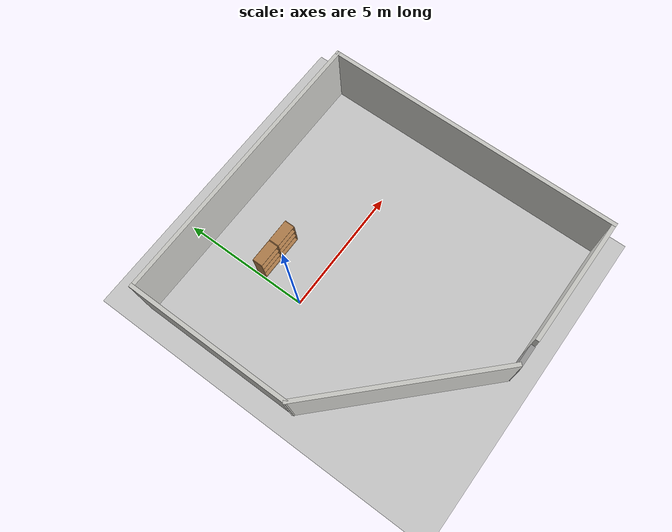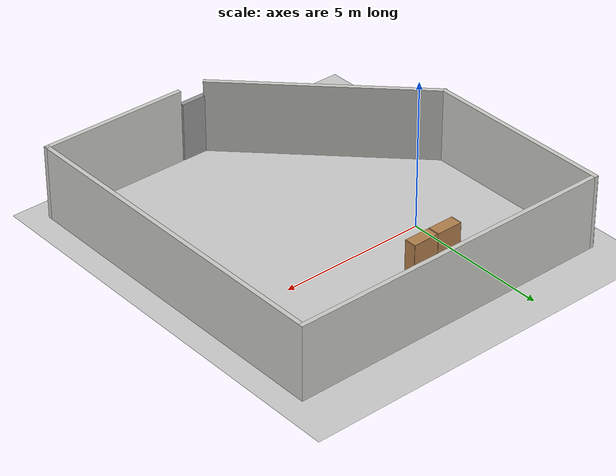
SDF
<sdf version="1.7">
 <world name="default">
  <light name="sun" type="directional">
   <pose>0 0 10 0 -0 0</pose>
   <diffuse>0.8 0.8 0.8 1</diffuse>
   <specular>0.2 0.2 0.2 1</specular>
   <attenuation>
    <range>1000</range>
    <constant>0.9</constant>
    <linear>0.01</linear>
    <quadratic>0.001</quadratic>
   </attenuation>
   <direction>-0.5 0.1 -0.9</direction>
   <spot><inner_angle>0</inner_angle><outer_angle>0</outer_angle><falloff>0</falloff></spot>
  </light>
  <model name="ground_plane">
   <static>1</static>
   <link name="link">
    <collision name="collision">
     <geometry><plane><normal>0 0 1</normal><size>100 100</size></plane></geometry>
     <surface>
      <contact><collide_bitmask>65535</collide_bitmask></contact>
      <friction><ode><mu>100</mu><mu2>50</mu2></ode></friction>
     </surface>
    </collision>
    <visual name="visual">
     <cast_shadows>0</cast_shadows>
     <geometry><plane><normal>0 0 1</normal><size>100 100</size></plane></geometry>
     <material>
      <script><uri>file://media/materials/scripts/gazebo.material</uri><name>Gazebo/Grey</name></script>
     </material>
    </visual>
   </link>
  </model>
  <gravity>0 0 -9.8</gravity>
  <magnetic_field>6e-06 2.3e-05 -4.2e-05</magnetic_field>
  <atmosphere type="adiabatic"/>
  <physics type="ode">
   <max_step_size>0.001</max_step_size>
   <real_time_factor>1</real_time_factor>
   <real_time_update_rate>1000</real_time_update_rate>
  </physics>
  <scene><ambient>0.4 0.4 0.4 1</ambient><background>0.7 0.7 0.7 1</background><shadows>1</shadows></scene>
  <audio><device>default</device></audio>
  <spherical_coordinates>
   <surface_model>EARTH_WGS84</surface_model>
   <latitude_deg>0</latitude_deg>
   <longitude_deg>0</longitude_deg>
   <elevation>0</elevation>
   <heading_deg>0</heading_deg>
  </spherical_coordinates>
  <model name="test">
   <pose>2.35917 -1.68316 0 0 -0 0</pose>
   <link name="Door_0">
    <collision name="Door_0_Collision">
     <geometry><box><size>0.9 0.17 2</size></box></geometry>
     <pose>0 0 1 0 -0 0</pose>
    </collision>
    <visual name="Door_0_Visual">
     <pose>0 0 1 0 -0 0</pose>
     <geometry><box><size>0.9 0.17 2</size></box></geometry>
     <material>
      <script><uri>file://media/materials/scripts/gazebo.material</uri><name>Gazebo/Grey</name></script>
     </material>
    </visual>
    <pose>0.142388 -5.7993 0 0 -0 0</pose>
   </link>
   <link name="Wall_0">
    <collision name="Wall_0_Collision">
     <geometry><box><size>7.5 0.15 2.5</size></box></geometry>
     <pose>0 0 1.25 0 -0 0</pose>
    </collision>
    <visual name="Wall_0_Visual">
     <pose>0 0 1.25 0 -0 0</pose>
     <geometry><box><size>7.5 0.15 2.5</size></box></geometry>
     <material>
      <script><uri>file://media/materials/scripts/gazebo.material</uri><name>Gazebo/CeilingTiled</name></script>
      <ambient>0.435294 0.796078 0.67451 1</ambient>
     </material>
     <meta><layer>0</layer></meta>
    </visual>
    <pose>-2.93585 -3.14862 0 0 -0 2.35619</pose>
   </link>
   <link name="Wall_2">
    <collision name="Wall_2_Collision">
     <geometry><box><size>6.5 0.15 2.5</size></box></geometry>
     <pose>0 0 1.25 0 -0 0</pose>
    </collision>
    <visual name="Wall_2_Visual">
     <pose>0 0 1.25 0 -0 0</pose>
     <geometry><box><size>6.5 0.15 2.5</size></box></geometry>
     <material>
      <script><uri>file://media/materials/scripts/gazebo.material</uri><name>Gazebo/CeilingTiled</name></script>
      <ambient>0.435294 0.796078 0.67451 1</ambient>
     </material>
     <meta><layer>0</layer></meta>
    </visual>
    <pose>-5.53447 2.625 0 0 -0 1.5708</pose>
   </link>
   <link name="Wall_3">
    <collision name="Wall_3_Collision">
     <geometry><box><size>11.25 0.15 2.5</size></box></geometry>
     <pose>0 0 1.25 0 -0 0</pose>
    </collision>
    <visual name="Wall_3_Visual">
     <pose>0 0 1.25 0 -0 0</pose>
     <geometry><box><size>11.25 0.15 2.5</size></box></geometry>
     <material>
      <script><uri>file://media/materials/scripts/gazebo.material</uri><name>Gazebo/CeilingTiled</name></script>
      <ambient>0.435294 0.796078 0.67451 1</ambient>
     </material>
     <meta><layer>0</layer></meta>
    </visual>
    <pose>0.015533 5.8 0 0 -0 0</pose>
   </link>
   <link name="Wall_4">
    <collision name="Wall_4_Collision">
     <geometry><box><size>11.75 0.15 2.5</size></box></geometry>
     <pose>0 0 1.25 0 -0 0</pose>
    </collision>
    <visual name="Wall_4_Visual">
     <pose>0 0 1.25 0 -0 0</pose>
     <geometry><box><size>11.75 0.15 2.5</size></box></geometry>
     <material>
      <script><uri>file://media/materials/scripts/gazebo.material</uri><name>Gazebo/CeilingTiled</name></script>
      <ambient>0.435294 0.796078 0.67451 1</ambient>
     </material>
     <meta><layer>0</layer></meta>
    </visual>
    <pose>5.56553 -0 0 0 -0 -1.5708</pose>
   </link>
   <link name="Wall_5">
    <collision name="Wall_5_Collision">
     <geometry><box><size>5 0.15 2.5</size></box></geometry>
     <pose>0 0 1.25 0 -0 0</pose>
    </collision>
    <visual name="Wall_5_Visual">
     <pose>0 0 1.25 0 -0 0</pose>
     <geometry><box><size>5 0.15 2.5</size></box></geometry>
     <material>
      <script><uri>file://media/materials/scripts/gazebo.material</uri><name>Gazebo/CeilingTiled</name></script>
      <ambient>0.435294 0.796078 0.67451 1</ambient>
     </material>
     <meta><layer>0</layer></meta>
    </visual>
    <pose>3.14053 -5.8 0 0 -0 3.14159</pose>
   </link>
   <static>1</static>
  </model>
  <model name="bookshelf">
   <static>1</static>
   <link name="link">
    <inertial><mass>1</mass></inertial>
    <collision name="back">
     <pose>0 0.005 0.6 0 -0 0</pose>
     <geometry><box><size>0.9 0.01 1.2</size></box></geometry>
    </collision>
    <visual name="visual1">
     <pose>0 0.005 0.6 0 -0 0</pose>
     <geometry><box><size>0.9 0.01 1.2</size></box></geometry>
     <material>
      <script><uri>file://media/materials/scripts/gazebo.material</uri><name>Gazebo/Wood</name></script>
     </material>
    </visual>
    <collision name="left_side">
     <pose>0.45 -0.195 0.6 0 -0 0</pose>
     <geometry><box><size>0.02 0.4 1.2</size></box></geometry>
    </collision>
    <visual name="visual2">
     <pose>0.45 -0.195 0.6 0 -0 0</pose>
     <geometry><box><size>0.02 0.4 1.2</size></box></geometry>
     <material>
      <script><uri>file://media/materials/scripts/gazebo.material</uri><name>Gazebo/Wood</name></script>
     </material>
    </visual>
    <collision name="right_side">
     <pose>-0.45 -0.195 0.6 0 -0 0</pose>
     <geometry><box><size>0.02 0.4 1.2</size></box></geometry>
    </collision>
    <visual name="visual3">
     <pose>-0.45 -0.195 0.6 0 -0 0</pose>
     <geometry><box><size>0.02 0.4 1.2</size></box></geometry>
     <material>
      <script><uri>file://media/materials/scripts/gazebo.material</uri><name>Gazebo/Wood</name></script>
     </material>
    </visual>
    <collision name="bottom">
     <pose>0 -0.195 0.03 0 -0 0</pose>
     <geometry><box><size>0.88 0.4 0.06</size></box></geometry>
    </collision>
    <visual name="visual4">
     <pose>0 -0.195 0.03 0 -0 0</pose>
     <geometry><box><size>0.88 0.4 0.06</size></box></geometry>
     <material>
      <script><uri>file://media/materials/scripts/gazebo.material</uri><name>Gazebo/Wood</name></script>
     </material>
    </visual>
    <collision name="top">
     <pose>0 -0.195 1.19 0 -0 0</pose>
     <geometry><box><size>0.88 0.4 0.02</size></box></geometry>
    </collision>
    <visual name="visual5">
     <pose>0 -0.195 1.19 0 -0 0</pose>
     <geometry><box><size>0.88 0.4 0.02</size></box></geometry>
     <material>
      <script><uri>file://media/materials/scripts/gazebo.material</uri><name>Gazebo/Wood</name></script>
     </material>
    </visual>
    <collision name="low_shelf">
     <pose>0 -0.195 0.43 0 -0 0</pose>
     <geometry><box><size>0.88 0.4 0.02</size></box></geometry>
    </collision>
    <visual name="visual6">
     <pose>0 -0.195 0.43 0 -0 0</pose>
     <geometry><box><size>0.88 0.4 0.02</size></box></geometry>
     <material>
      <script><uri>file://media/materials/scripts/gazebo.material</uri><name>Gazebo/Wood</name></script>
     </material>
    </visual>
    <collision name="high_shelf">
     <pose>0 -0.195 0.8 0 -0 0</pose>
     <geometry><box><size>0.88 0.4 0.02</size></box></geometry>
    </collision>
    <visual name="visual7">
     <pose>0 -0.195 0.8 0 -0 0</pose>
     <geometry><box><size>0.88 0.4 0.02</size></box></geometry>
     <material>
      <script><uri>file://media/materials/scripts/gazebo.material</uri><name>Gazebo/Wood</name></script>
     </material>
    </visual>
   </link>
   <pose>0.525908 1.97963 0 0 -0 0</pose>
  </model>
  <model name="bookshelf_0">
   <static>1</static>
   <link name="link">
    <inertial><mass>1</mass></inertial>
    <collision name="back">
     <pose>0 0.005 0.6 0 -0 0</pose>
     <geometry><box><size>0.9 0.01 1.2</size></box></geometry>
    </collision>
    <visual name="visual1">
     <pose>0 0.005 0.6 0 -0 0</pose>
     <geometry><box><size>0.9 0.01 1.2</size></box></geometry>
     <material>
      <script><uri>file://media/materials/scripts/gazebo.material</uri><name>Gazebo/Wood</name></script>
     </material>
    </visual>
    <collision name="left_side">
     <pose>0.45 -0.195 0.6 0 -0 0</pose>
     <geometry><box><size>0.02 0.4 1.2</size></box></geometry>
    </collision>
    <visual name="visual2">
     <pose>0.45 -0.195 0.6 0 -0 0</pose>
     <geometry><box><size>0.02 0.4 1.2</size></box></geometry>
     <material>
      <script><uri>file://media/materials/scripts/gazebo.material</uri><name>Gazebo/Wood</name></script>
     </material>
    </visual>
    <collision name="right_side">
     <pose>-0.45 -0.195 0.6 0 -0 0</pose>
     <geometry><box><size>0.02 0.4 1.2</size></box></geometry>
    </collision>
    <visual name="visual3">
     <pose>-0.45 -0.195 0.6 0 -0 0</pose>
     <geometry><box><size>0.02 0.4 1.2</size></box></geometry>
     <material>
      <script><uri>file://media/materials/scripts/gazebo.material</uri><name>Gazebo/Wood</name></script>
     </material>
    </visual>
    <collision name="bottom">
     <pose>0 -0.195 0.03 0 -0 0</pose>
     <geometry><box><size>0.88 0.4 0.06</size></box></geometry>
    </collision>
    <visual name="visual4">
     <pose>0 -0.195 0.03 0 -0 0</pose>
     <geometry><box><size>0.88 0.4 0.06</size></box></geometry>
     <material>
      <script><uri>file://media/materials/scripts/gazebo.material</uri><name>Gazebo/Wood</name></script>
     </material>
    </visual>
    <collision name="top">
     <pose>0 -0.195 1.19 0 -0 0</pose>
     <geometry><box><size>0.88 0.4 0.02</size></box></geometry>
    </collision>
    <visual name="visual5">
     <pose>0 -0.195 1.19 0 -0 0</pose>
     <geometry><box><size>0.88 0.4 0.02</size></box></geometry>
     <material>
      <script><uri>file://media/materials/scripts/gazebo.material</uri><name>Gazebo/Wood</name></script>
     </material>
    </visual>
    <collision name="low_shelf">
     <pose>0 -0.195 0.43 0 -0 0</pose>
     <geometry><box><size>0.88 0.4 0.02</size></box></geometry>
    </collision>
    <visual name="visual6">
     <pose>0 -0.195 0.43 0 -0 0</pose>
     <geometry><box><size>0.88 0.4 0.02</size></box></geometry>
     <material>
      <script><uri>file://media/materials/scripts/gazebo.material</uri><name>Gazebo/Wood</name></script>
     </material>
    </visual>
    <collision name="high_shelf">
     <pose>0 -0.195 0.8 0 -0 0</pose>
     <geometry><box><size>0.88 0.4 0.02</size></box></geometry>
    </collision>
    <visual name="visual7">
     <pose>0 -0.195 0.8 0 -0 0</pose>
     <geometry><box><size>0.88 0.4 0.02</size></box></geometry>
     <material>
      <script><uri>file://media/materials/scripts/gazebo.material</uri><name>Gazebo/Wood</name></script>
     </material>
    </visual>
   </link>
   <pose>1.44517 1.98448 0 0 -0 0</pose>
  </model>
 </world>
</sdf>
